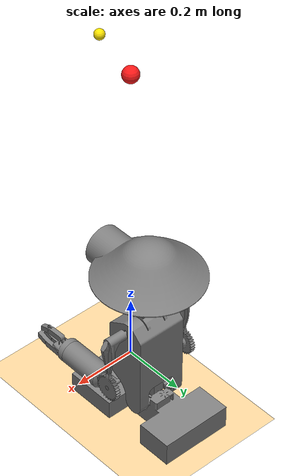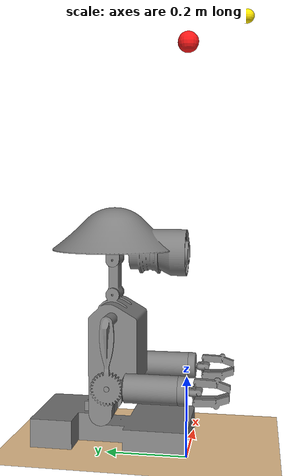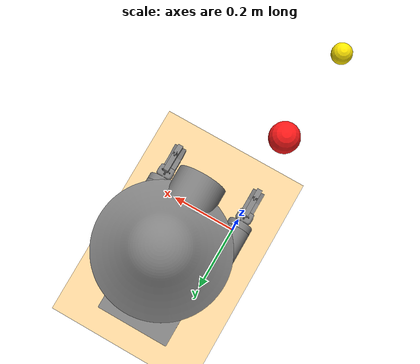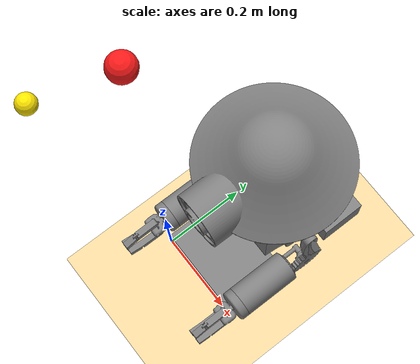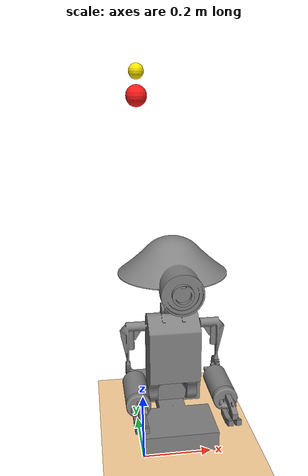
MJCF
<mujoco model="DUM4_grab">
    <compiler angle="radian" />
    <option integrator="implicit" timestep="0.005" />
    <visual>
        <global offwidth="1280" offheight="720" />
    </visual>

    <asset>
        <mesh name="Base_link" file="meshes/Base_link.stl" scale="0.001 0.001 0.001" />
        <mesh name="BaseHip_link" file="meshes/BaseHip_link.stl" scale="0.001 0.001 0.001" />
        <mesh name="FullBody_link" file="meshes/FullBody_link.stl" scale="0.001 0.001 0.001" />
        <mesh name="BodyLeftShoulder_Link" file="meshes/BodyLeftShoulder_Link.stl" scale="0.001 0.001 0.001" />
        <mesh name="BodyShoulderRight_Link" file="meshes/BodyShoulderRight_Link.stl" scale="0.001 0.001 0.001" />
        <mesh name="RightShoulderArm_Link" file="meshes/RightShoulderArm_Link.stl" scale="0.001 0.001 0.001" />
        <mesh name="LeftShoulderArm_Link" file="meshes/LeftShoulderArm_Link.stl" scale="0.001 0.001 0.001" />
        <mesh name="ForearmLeft_link" file="meshes/ForearmLeft_link.stl" scale="0.001 0.001 0.001" />
        <mesh name="ForearmRight_link" file="meshes/ForearmRight_link.stl" scale="0.001 0.001 0.001" />
        <mesh name="WristRight_link" file="meshes/WristRight_link.stl" scale="0.001 0.001 0.001" />
        <mesh name="FingersLeverRight_link" file="meshes/FingersLeverRight_link.stl" scale="0.001 0.001 0.001" />
        <mesh name="RigthTopFinger_link" file="meshes/RigthTopFinger_link.stl" scale="0.001 0.001 0.001" />
        <mesh name="RightBotFinger_link" file="meshes/RightBotFinger_link.stl" scale="0.001 0.001 0.001" />
        <mesh name="WristLeft_link" file="meshes/WristLeft_link.stl" scale="0.001 0.001 0.001" />
        <mesh name="FingersLeverLeft_link" file="meshes/FingersLeverLeft_link.stl" scale="0.001 0.001 0.001" />
        <mesh name="LeftTopFinger_link" file="meshes/LeftTopFinger_link.stl" scale="0.001 0.001 0.001" />
        <mesh name="LeftBotFinger_link" file="meshes/LeftBotFinger_link.stl" scale="0.001 0.001 0.001" />
        <mesh name="Neck_link" file="meshes/Neck_link.stl" scale="0.001 0.001 0.001" />
        <mesh name="HeadBase_link" file="meshes/HeadBase_link.stl" scale="0.001 0.001 0.001" />
        <mesh name="LenteExt_link" file="meshes/LenteExt_link.stl" scale="0.001 0.001 0.001" />
        <mesh name="LenteInt_link" file="meshes/LenteInt_link.stl" scale="0.001 0.001 0.001" />
    </asset>
    <worldbody>
        <light directional="true" pos="-0.5 0.5 3" dir="0 0 -1" />
        <geom pos="0 0 0" size="1 1 1" type="plane" rgba="1 0.83 0.61 0.5" />
        <!-- Target visual para RL head-tracking (mocap = pose seteada desde codigo) -->
        <body name="target" mocap="true" pos="0 0 1.0">
            <geom name="target_geom" type="sphere" size="0.025" rgba="1 0.1 0.1 1" contype="0" conaffinity="0" />
        </body>
        <!-- Bola amarilla para tarea grab: freejoint, masa pequena.
             Pos inicial se reposiciona en cada reset desde Python. -->
        <body name="yellow_ball" pos="-0.012 -0.137 1.05">
            <freejoint name="ball_free"/>
            <geom name="ball_geom" type="sphere" size="0.016" rgba="1 0.9 0 1"
                  mass="0.010" contype="0" conaffinity="0"/>
        </body>
        <body name="Base_link" pos="-0.49041465089346836 0.6163554147407629 0.09256743876909335" euler="2.192008610302898e-17 2.1137487076796193e-17 -1.5707963267949199">
            <geom name="Base_link_geom" type="mesh" mesh="Base_link" pos="0 0 0" euler="0 0 0" />
            <inertial mass="2.5686560790498238" pos="0.4059758533032169 0.6030766279468239 -0.05259420379589351" fullinertia="0.1162260390457559 0.4484597933046195 0.5468615218419377 0.00021367853479986663 0.013204837742259792 -0.0001988317425628886" />
            <body name="BaseHip_link" pos="0.6833656443798684 0.38691435800750773 0.02959497105331984" euler="6.123233995761558e-17 -1.3506756093454076e-14 1.5707963267949199">
                <geom name="BaseHip_link_geom" type="mesh" mesh="BaseHip_link" pos="0 0 0" euler="0 0 0" />
                <inertial mass="0.8960915657403068" pos="0.21384545840294725 0.28547506459516403 -0.028631766992634693" fullinertia="0.0004072702169369141 0.000707340860722314 0.000496468604737454 6.3409287313042134e-06 -2.5719708909663157e-06 -1.867087549890158e-05" />
                <body name="FullBody_link" pos="0.49250000000000066 0.1920000000000003 0.16054771464531606" euler="-0.0 0.0 4.2193972572360445e-42">
                    <joint name="HipBody_joint" type="hinge" axis="1.0 5.406725158324904e-31 -4.0094852880505995e-17" pos="-0.3067067071140243 0.09941022963911494 -0.19996812446772536" limited="true" range="-0.523598776  0.523598776" damping="40.0" frictionloss="0.1"/>
                    <geom name="FullBody_link_geom" type="mesh" mesh="FullBody_link" pos="0 0 0" euler="0 0 0" />
                    <inertial mass="0.03077775275728115" pos="-0.2748562047070093 0.07604771905982315 -0.042809377340932674" fullinertia="0.05913846104456666 0.06751063222309828 0.0314000156710864 3.531098098097749e-05 -0.00027353184418924046 0.0017686717833686899" />
                    <body name="BodyShoulderLeft_Link" pos="0.0 -0.0004999999999999894 3.552713678800501e-17" euler="-0.0 0.0 7.888609052216694e-31">
                        <joint name="BodyShoulderLeft_joint" type="hinge" axis="-7.888609052210118e-31 -1.0 -1.3484836007351056e-14" pos="-0.23487070711402433 0.08669122963911181 0.03447287553227442" limited="true" range="-0.1309  0.1309" damping="5.0" frictionloss="0.05"/>
                        <geom name="BodyShoulderLeft_Link_geom" type="mesh" mesh="BodyLeftShoulder_Link" pos="0 0 0" euler="0 0 0" />
                        <inertial mass="0.001580164403355698" pos="-0.23097897492018266 0.07102238334903822 0.037812155469283126" fullinertia="0.00010342997815528804 0.00012247959556750676 5.5657869369753866e-05 3.1812903011561105e-06 -4.646173970512077e-06 -7.820179979611136e-07" />
                        <body name="LeftShoulderArm_Link" pos="0.0050000000000012795 -0.001318155121034277 -0.0011714595677372942" euler="-1.8251529652410896e-17 4.019437521819588e-15 8.630902712646249e-18">
                            <joint name="LeftShoulderArm_joint" type="hinge" axis="1.0 -8.630902712646497e-18 3.979342668939082e-15" pos="-0.21423370711402578 0.07000038476014589 0.0500003351000106" limited="true" range="-0.741799388 0.741799388" damping="5.0" frictionloss="0.05"/>
                            <geom name="LeftShoulderArm_Link_geom" type="mesh" mesh="LeftShoulderArm_Link" pos="0 0 0" euler="0 0 0" />
                            <inertial mass="0.006044348563915437" pos="-0.14775520501081005 0.07000069785250757 -0.03493149873121201" fullinertia="0.006742433433134626 0.006858876869892644 0.0005583571131118684 -3.4859104103944944e-09 0.0007244169671068692 2.7789685096562462e-08" />
                            <body name="LeftForearm_link" pos="0.0012660897788712333 8.260059303211165e-15 -2.948752353404416e-15" euler="-0.0 -2.8656915481489102e-15 -8.630902712509018e-18">
                                <joint name="LeftForearm_joint" type="hinge" axis="-1.0 1.3747904240618293e-28 -1.113651120790172e-15" pos="-0.13399979689289668 0.07000038476013982 -0.11321466489998573" limited="true" range="-1.5708 1.5708" damping="0.75" frictionloss="0.01"/>
                                <geom name="LeftForearm_link_geom" type="mesh" mesh="ForearmLeft_link" pos="0 0 0" euler="0 0 0" />
                                <inertial mass="0.00760399800858365" pos="-0.15628264744397327 -0.025728185625634687 -0.11508012737492908" fullinertia="0.0036280202441539636 0.0010097063275369732 0.003658026145208641 7.969107417180748e-05 5.0947784061571735e-06 -0.00015416807508479666" />
                                <body name="WristLeft_link" pos="-0.01999999999999993 1.2434497875801754e-16 0.0" euler="-1.9428902930935822e-16 0.0 -1.3821853194088672e-28">
                                    <joint name="LeftWrist_joint" type="hinge" axis="1.5777218104420236e-29 -1.0 -1.3697376566312825e-14" pos="-0.13443279689289678 -0.10388761523986029 -0.1132796648999881" limited="true" range="-1.5708 1.5708" damping="0.75" frictionloss="0.01"/>
                                    <geom name="WristLeft_link_geom" type="mesh" mesh="WristLeft_link" pos="0 0 0" euler="0 0 0" />
                                    <inertial mass="0.0010523058119647006" pos="-0.13094086013592526 -0.11928841654945467 -0.11223969951542469" fullinertia="0.00013484065595188027 0.00017430131996684645 0.00015570833627770447 -7.063156137799158e-06 -4.330604677182016e-06 -2.2987911685198255e-06" />
                                    <!-- Site grip_L: centro de la PALMA izquierda. Mismo metodo que grip_R.
                                         rgba alpha=0 -> invisible al render (el site_xpos sigue funcionando para el grab). -->
                                    <site name="grip_L" pos="-0.1347 -0.1843 -0.1133" size="0.012" rgba="0 1 0 0"/>
                                    <body name="LeftFingersLever_link" pos="-0.04648622952275133 0.02574992388730566 -0.0019991037873249694" euler="1.4966003627485e-15 0.0 -7.888609052263423e-31">
                                        <joint name="LeftLever_Slider" type="slide" axis="1.6566079009641248e-29 -1.0 -1.2200776203564325e-14" pos="-0.08793256737014545 -0.1418875391271661 -0.1112805611126631" limited="true" range="0.0 0.02" damping="0.75" frictionloss="0.01"/>
                                        <geom name="LeftFingersLever_link_geom" type="mesh" mesh="FingersLeverLeft_link" pos="0 0 0" euler="0 0 0" />
                                        <inertial mass="0.0002502162568032953" pos="-0.08793286311977296 -0.1580316237704062 -0.11128018896759909" fullinertia="1.4346397986760343e-07 8.059226657580222e-08 2.2115726436549438e-07 -2.6977496231812774e-14 -5.458814349447949e-11 -6.865250339310314e-15" />
                                    </body>
                                    <body name="LeftTopFinger_link" pos="-0.09150000058017238 0.005999999999994508 -0.007000005854844353" euler="-0.0 -9.83622225043893e-17 1.57772181044155e-29">
                                        <joint name="LeftFingerTop_joint" type="hinge" axis="-1.0 1.5254098764959316e-29 -1.0152888982857827e-15" pos="-0.0434327963127245 -0.15081761523985507 -0.0862976590451443" limited="true" range="0.0 0.34906585" damping="0.5" frictionloss="0.01"/>
                                        <geom name="LeftTopFinger_link_geom" type="mesh" mesh="LeftTopFinger_link" pos="0 0 0" euler="0 0 0" />
                                        <inertial mass="0.00017504820565798226" pos="-0.043439917104673695 -0.19042347475958155 -0.0868188581695989" fullinertia="0.00011707275115569078 1.0569157708168285e-05 0.00011288264167109947 -5.8724265930031415e-08 2.8321002246495928e-08 -1.3696662666319162e-05" />
                                    </body>
                                    <body name="LeftBotFinger_link" pos="-0.09149999999999932 0.005999999999994703 -0.006992418275234122" euler="-0.0 0.0 1.57772181044155e-29" >
                                        <joint name="LeftFingerBot_joint" type="hinge" axis="-1.0 1.5254098764959316e-29 -1.113651120790172e-15" pos="-0.04293279689289753 -0.15081761523985474 -0.12626224662475452" limited="true" range="-0.34906585 0.0" damping="0.5" frictionloss="0.01"/>
                                        <geom name="LeftBotFinger_link_geom" type="mesh" mesh="LeftBotFinger_link" pos="0 0 0" euler="0 0 0" />
                                        <inertial mass="0.00032877369249164234" pos="-0.042938369298710595 -0.19025542357391964 -0.12573014078361325" fullinertia="0.00022143789541416437 5.882586795043846e-05 0.0002523423378452169 7.83221744205041e-08 1.9216897559315403e-08 2.508596718914621e-05" />
                                    </body>
                                </body>
                            </body>
                        </body>
                    </body>
                    <body name="RightBodyShoulder_Link" pos="0.0 -0.0004999999999999005 -4.263256414560601e-16" euler="4.728783881889385e-15 0.0 1.019463261665369e-31">
                        <joint name="RightBodyShoulder_joint" type="hinge" axis="-5.406725158324904e-31 -1.0 -8.75605212546167e-15" pos="-0.3151297071140243 0.08669122963911187 0.03447287553227451" limited="true" range="-0.087266463 0.087266463" damping="5.0" frictionloss="0.05"/>
                        <geom name="RightBodyShoulder_Link_geom" type="mesh" mesh="BodyShoulderRight_Link" pos="0 0 0" euler="0 0 0" />
                        <inertial mass="0.0015801644033557983" pos="-0.31902102507983776 0.0710223833490348 0.03781215546928169" fullinertia="0.00010342997815538518 0.00012247959556840188 5.565786937072012e-05 -3.181290301413695e-06 4.64617397038025e-06 -7.820179980065322e-07" />
                        <body name="RightShoulderArm_Link" pos="-0.004999999999999787 8.881784197001253e-17 1.3500311979441904e-15" euler="-6.626431603856499e-29 -3.986888380656777e-15 -3.4460753534106624e-29">
                            <joint name="RightShoulderArm_joint" type="hinge" axis="1.0 3.470987982972452e-29 -4.026983233537283e-15" pos="-0.3397657071140243 0.06868222963911166 0.0488288755322743"  limited="true" range="-0.741799388 0.741799388" damping="5.0" frictionloss="0.05"/>
                            <geom name="RightShoulderArm_Link_geom" type="mesh" mesh="RightShoulderArm_Link" pos="0 0 0" euler="0 0 0" />
                            <inertial mass="0.006044348406701217" pos="-0.4012797494257568 0.06868254273148353 -0.036102959407607306" fullinertia="0.006742433319325109 0.006855275668464347 0.0005547560251000772 3.4565310156444675e-09 -0.0007208413951458895 2.7789684143787037e-08" />
                            <body name="RightForearm_link" pos="0.00013390950585971952 -0.0013181551210373144 -0.0011714595677335992" euler="-0.0 0.0 -5.5059527148838425e-31">
                                <joint name="RightForearm_joint" type="hinge" axis="-1.0 -3.5260475101212904e-29 4.026983233537283e-15" pos="-0.4163996166198847 0.07000038476015039 -0.11321466489999173" limited="true" range="-1.5708 1.5708" damping="0.75" frictionloss="0.01"/>
                                <geom name="RightForearm_link_geom" type="mesh" mesh="ForearmRight_link" pos="0 0 0" euler="0 0 0" />
                                <inertial mass="0.007580802843149587" pos="-0.3940021843225092 -0.025789916933327592 -0.11508573340750891" fullinertia="0.003625282012670414 0.001004896002765601 0.00365039126096615 -8.572215713482709e-05 -5.4252145051112465e-06 -0.00015409686018611125" />
                                <body name="RightWrist_link" pos="0.031099999999999354 0.0010000000000029985 -2.913225216616411e-15" euler="2.3314683517127853e-15 0.0 3.4709879829723886e-29">
                                    <joint name="RightWrist_joint" type="hinge" axis="3.470987982972452e-29 1.0 6.424583773748951e-15" pos="-0.42706761661988407 -0.10488761523985289 -0.11327966489999021" limited="true" range="-1.5708 1.5708" damping="0.75" frictionloss="0.01"/>
                                    <geom name="RightWrist_link_geom" type="mesh" mesh="WristRight_link" pos="0 0 0" euler="0 0 0" />
                                    <inertial mass="0.001552756438192612" pos="-0.4305589870484671 -0.12018641955759513 -0.11224742302493411" fullinertia="0.00013512664414972597 0.0001743909362236108 0.00015590432307399096 7.394754135254912e-06 4.342023717063553e-06 -2.383774291398711e-06" />
                                    <site name="grip_R" pos="-0.4268 -0.1845 -0.1137" size="0.012" rgba="0 1 0 0"/>
                                    <body name="RightFingersLever_link" pos="0.039886229522752434 0.0014783163197503947 -0.0012398490413806586" euler="-0.010902936554985417 1.2246467991471227e-16 4.026354632581604e-15">
                                        <joint name="RightLever_Slider" type="slide" axis="-3.982450237386041e-15 -1.0000004394448656 2.746815654895707e-07" pos="-0.467066846142637 -0.11688781938049393 -0.11327994404304859" limited="true" range="0.0 0.02" damping="0.75" frictionloss="0.01"/>
                                        <geom name="RightFingersLever_link_geom" type="mesh" mesh="FingersLeverRight_link" pos="0 0 0" euler="0 0 0" />
                                        <inertial mass="0.0002502162568032968" pos="-0.46706713502130953 -0.1330316998830904 -0.11328013041947792" fullinertia="1.4346397986817264e-07 8.059226657606411e-08 2.2115726436584542e-07 -2.6977652905654876e-14 5.4588121651559864e-11 -6.8654913564264514e-15" />
                                    </body>
                                    <body name="RigthTopFinger_link" pos="0.05500000002874209 0.0 -3.552713678800501e-17" euler="-0.0 1.5387337373564732e-16 -3.3721307449609837e-29">
                                        <joint name="RightFingerTop_joint" type="hinge" axis="-1.0 -2.4883118759228663e-29 3.873109859801636e-15" pos="-0.48156761664862613 -0.14581761523985298 -0.09329766489999049" limited="true" range="0.0 0.34906585" damping="0.5" frictionloss="0.01"/>
                                        <geom name="RigthTopFinger_link_geom" type="mesh" mesh="RigthTopFinger_link" pos="0 0 0" euler="0 0 0" />
                                        <inertial mass="0.0017504820557522993" pos="-0.4815600828953232 -0.1854234747802852 -0.09381886402104374" fullinertia="0.00011707275098959795 1.0569157699652328e-05 0.00011288264151040553 5.872426590600409e-08 -2.83210022383226e-08 -1.3696662693378802e-05" />
                                    </body>
                                    <body name="RightBotFinger_link" pos="0.055000000000000146 0.0016019936645571776 -0.0008101076126539652" euler="-0.0 1.5387337373564811e-16 -3.470987982972388e-29">
                                        <joint name="RightFingerBot_joint" type="hinge" axis="-1.0 -2.587169113934271e-29 3.873109859801635e-15" pos="-0.4820676166198843 -0.14581760890440992 -0.13326255728733652" limited="true" range="-0.34906585 0.0 " damping="0.5" frictionloss="0.01"/>
                                        <geom name="RightBotFinger_link_geom" type="mesh" mesh="RightBotFinger_link" pos="0 0 0" euler="0 0 0" />
                                        <inertial mass="0.003287736926194663" pos="-0.4820616307012917 -0.18525542355744726 -0.13273014663702865" fullinertia="0.00022143789564719324 5.882586796765595e-05 0.00025234233808858243 -7.832217439595916e-08 -1.9216897555976945e-08 2.5085967168581173e-05" />
                                    </body>
                                </body>
                            </body>
                        </body>
                    </body>
                    <body name="Neck_link" pos="1.4210854715202004e-16 0.00036714200512303567 -0.000262232066032162" euler="-5.988489307583366e-17 1.1542917984037797e-15 -1.4409821234723413e-31">
                        <joint name="Neck_joint" type="hinge" axis="-1.0 -6.8717180415736575e-31 -1.1141969455232755e-15" pos="-0.2994997071140246 0.07644508763398802 0.10105010759830632" limited="true" range="-0.872664626 1.221730476 " damping="5.0" frictionloss="0.1"/>
                        <geom name="Neck_link_geom" type="mesh" mesh="Neck_link" pos="0 0 0" euler="0 0 0" />
                        <inertial mass="0.003004544673814925" pos="-0.27396409671398037 0.07644546299124172 0.14604028758513957" fullinertia="0.0004813487439827985 0.0005288328590369821 0.00012405625886341458 -2.1776938587108386e-10 1.0117082966391687e-06 -1.4063382201748417e-10" />
                        <body name="HeadBase_link" pos="-2.7749467641058345e-07 -0.00036714200512347975 0.0002617680788097232" euler="-2.2204469179127474e-16 1.5153644512849699e-06 1.200032827176549e-22">
                            <joint name="HeadBase_joint" type="hinge" axis="1.0000000000018825 2.8079661542830124e-20 -4.846355475991192e-07" pos="-0.29799971873287356 0.07681222963911002 0.19078788794153526" limited="true" range="-0.698131701 0.698131701" damping="5.0" frictionloss="0.1"/>
                            <geom name="HeadBase_link_geom" type="mesh" mesh="HeadBase_link" pos="0 0 0" euler="0 0 0" />
                            <inertial mass="0.008292197938464645" pos="-0.27341672481886703 0.08325319774714132 0.21831365816936063" fullinertia="0.0006128769725709957 0.0008578490533403282 0.0010644576576086845 -1.2084540966775883e-05 1.085184479466515e-05 -7.362870407013952e-05" />
                            <body name="LenteExt_link" pos="0.0004999999999997585 0.0009999999999998899 -1.4210854715202004e-16" euler="5.551115123126413e-17 8.264055774062899e-17 1.0648908069593082e-21">
                                <joint name="HeadRotation_joint" type="hinge" axis="4.84635547516478e-07 -1.365574320289045e-14 1.0000000000018827" pos="-0.2744997566170123 0.07581222963910991 0.21578792431025356" limited="true" range="-2.79253 2.79253" damping="5.0" frictionloss="0.1"/>
                                <geom name="LenteExt_link_geom" type="mesh" mesh="LenteExt_link" pos="0 0 0" euler="0 0 0"/>
                                <site name="lens_center" pos="-0.274 0.013 0.220" size="0.005" rgba="1 1 0 0.0" type="sphere"/>
                                <inertial mass="0.04614137041683628" pos="-0.2739713756270979 0.01302389740638243 0.22079805785885293" fullinertia="0.08560328250932785 0.045553726512780016 0.10676785371969727 0.0003031396090717247 9.679865428052625e-05 -0.011028121611163578" />
                                <body name="LenteInt_link" pos="1.4210854715202004e-16 -0.014999999999999965 -6.394884621840901e-16" euler="4.9789962505144925e-17 6.123201175701337e-17 6.123233995736765e-17">
                                    <joint name="LenteExt_joint" type="slide" axis="6.121215846663226e-17 1.0 1.3661464478465951e-14" pos="-0.2734467480021667 -0.08818777036089008 0.21010292590593704" limited="true" range="0.0 0.021" damping="5.0" frictionloss="0.01"/>
                                    <geom name="LenteInt_link_geom" type="mesh" mesh="LenteInt_link" pos="0 0 0" euler="0 0 0" />
                                    <inertial mass="0.003021264973037482" pos="-0.27344687236060033 -0.08907562592418654 0.20923732950881085" fullinertia="8.50114671194762e-05 0.00014657747592818077 9.180919722068854e-05 -1.8089708046838876e-19 6.186000055722115e-18 -1.3309448564103802e-06" />
                                </body>
                            </body>
                        </body>
                    </body>
                </body>
            </body>
        </body>
    </worldbody>
    <contact>
        <exclude body1="LenteExt_link" body2="HeadBase_link"/>
        <exclude body1="LenteExt_link" body2="Neck_link"/>
        <exclude body1="LenteInt_link" body2="HeadBase_link"/>
    </contact>
    <equality>
        <joint name="ELSliderTop_joint" joint1="LeftFingerTop_joint" joint2="LeftLever_Slider" polycoef="0 34.906585 0 0 0"/>
        <joint name="ELSliderBot_joint" joint1="LeftFingerBot_joint" joint2="LeftLever_Slider" polycoef="0 -34.906585 0 0 0"/>
        <joint name="ERSliderTop_joint" joint1="RightFingerTop_joint" joint2="RightLever_Slider" polycoef="0 34.906585 0 0 0"/>
        <joint name="ERSliderBot_joint" joint1="RightFingerBot_joint" joint2="RightLever_Slider" polycoef="0 -34.906585 0 0 0"/>
        <connect name="ee_ball_connect_R" body1="RightWrist_link" body2="yellow_ball" active="false" anchor="-0.4268 -0.1845 -0.1137"/>
        <connect name="ee_ball_connect_L" body1="WristLeft_link" body2="yellow_ball" active="false" anchor="-0.1347 -0.1843 -0.1133"/>
    </equality>
    <actuator>
        <!-- TORSO Y CUELLO (Basados en DS3218 - High Torque) -->
        <!-- Torque: 21.5 kg-cm = 2.11 N-m. Velocidad: 0.14s/60deg -->
        <position name="act_HipBody" joint="HipBody_joint" ctrlrange="-0.523 0.523"  kv="70" kp="800" forcerange="-12.11 12.11" gear="3" />
        <position name="act_Neck" joint="Neck_joint" ctrlrange="-0.872 1.221"  kv="24" kp="3000" forcerange="-2.11 2.11"/>
        <position name="act_HeadBase" joint="HeadBase_joint" ctrlrange="-0.698 0.698"  kv="18" kp="600" forcerange="-2.11    2.11  "/>
        <position name="act_HeadRot" joint="HeadRotation_joint" ctrlrange="-2.79253 2.79253"  kv="38" kp="3000" forcerange="-2.11 2.11"/>
        <!-- BRAZOS Y HOMBROS (Basados en MG996R - Metal Gear) -->
        <!-- Torque: 11 kg-cm = 1.08 N-m. Velocidad: 0.15s/60deg -->
        <!-- Actuadores nuevos para los body shoulders (movimiento ligero hombros pegado al torso) -->
        <position name="act_BodyShoulderLeft" joint="BodyShoulderLeft_joint" ctrlrange="-0.1309 0.1309"  kv="30" kp="800" forcerange="-1.08 1.08"/>
        <position name="act_BodyShoulderRight" joint="RightBodyShoulder_joint" ctrlrange="-0.1309 0.1309"  kv="30" kp="800" forcerange="-1.08 1.08"/>
        <position name="act_LeftShoulderArm" joint="LeftShoulderArm_joint" ctrlrange="-0.741799388 0.741799388"  kv="16" kp="500" forcerange="-2.11 2.11"/>
        <position name="act_RightShoulderArm" joint="RightShoulderArm_joint" ctrlrange="-0.741799388 0.741799388"  kv="16" kp="500" forcerange="-2.11 2.11"/>
        <position name="act_LeftForearm" joint="LeftForearm_joint" ctrlrange="-1.5708 1.5708"  kv="20" kp="1000" forcerange="-2.11 2.11"/>
        <position name="act_RightForearm" joint="RightForearm_joint" ctrlrange="-1.5708 1.5708"  kv="20" kp="1400" forcerange="-2.11 2.11"/>
        <!-- MUÑECAS Y MECANISMOS (Basados en MG90S - Micro Metal Gear) -->
        <!-- Torque: 2.2 kg-cm = 0.21 N-m. Velocidad: 0.08s/60deg -->
        <position name="act_LeftWrist" joint="LeftWrist_joint" ctrlrange="-1.57 1.57"  kv="20" kp="900" forcerange="-0.21 0.21"/>
        <position name="act_RightWrist" joint="RightWrist_joint" ctrlrange="-1.57 1.57"  kv="20" kp="900" forcerange="-0.21 0.21"/>
        <!-- MECANISMOS DE PINZA (Accionados por MG90S via Leva) -->
        <position name="act_LeftLever_Slider" joint="LeftLever_Slider" ctrlrange="0.0 0.02"  kv="20" kp="1400" forcerange="-1.08 1.08"/>
        <position name="act_RightLever_Slider" joint="RightLever_Slider" ctrlrange="0.0 0.02"  kv="20" kp="1400" forcerange="-1.08 1.08"/>
        <!-- LENTE INTERNO (Enfoque animatronico, slide del lente interior) -->
        <position name="act_LenteExt" joint="LenteExt_joint" ctrlrange="0.0 0.021"  kv="5" kp="800" forcerange="-0.21 0.21"/>
    </actuator>
</mujoco>
